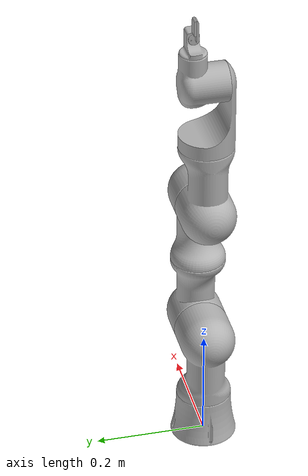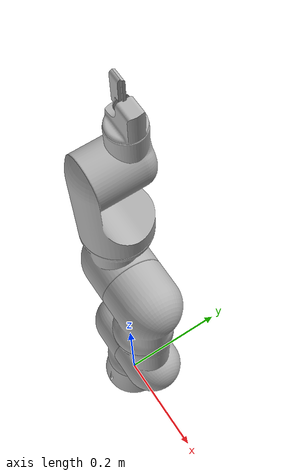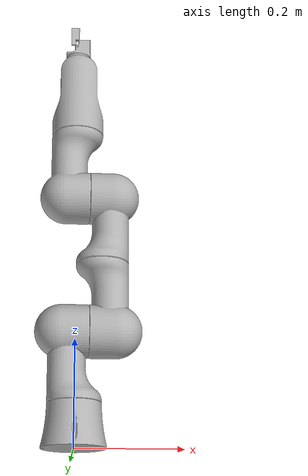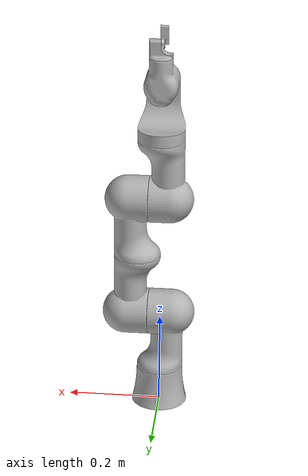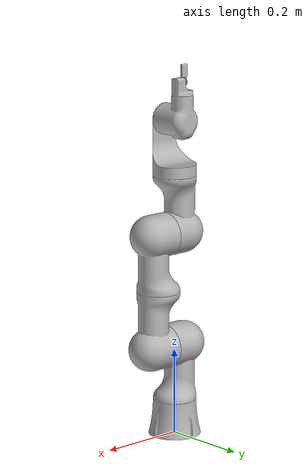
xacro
<?xml version="1.0" ?>
<robot name="robotic_arm" xmlns:xacro="http://www.ros.org/wiki/xacro">

<xacro:include filename="$(find robotic_arm_description)/urdf/materials.xacro" />
<xacro:include filename="$(find robotic_arm_description)/urdf/robotic_arm.trans" />
<xacro:include filename="$(find robotic_arm_description)/urdf/robotic_arm.gazebo" />
<link name="world"/>
<link name="base_link">
  <inertial>
    <origin rpy="0 0 0" xyz="0.0007204928345172032 -0.004020465220188242 0.04717716700960924"/>
    <mass value="5.749401825671835"/>
    <inertia ixx="0.007412" ixy="-0.0" ixz="-0.0" iyy="0.007412" iyz="-0.0" izz="0.008288"/>
  </inertial>
  <visual>
    <origin rpy="0 0 0" xyz="0 0 0"/>
    <geometry>
      <mesh filename="package://robotic_arm_description/meshes/base_link.stl" scale="0.001 0.001 0.001"/>
    </geometry>
    <material name="silver"/>
  </visual>
  <collision>
    <origin rpy="0 0 0" xyz="0 0 0"/>
    <geometry>
      <mesh filename="package://robotic_arm_description/meshes/base_link.stl" scale="0.001 0.001 0.001"/>
    </geometry>
  </collision>
</link>

<link name="link1_1">
  <inertial>
    <origin rpy="0 0 0" xyz="-0.014102677803517396 -4.3136583947021856e-07 0.0963021881490019"/>
    <mass value="9.886638889856904"/>
    <inertia ixx="0.028938" ixy="0.0" ixz="0.00225" iyy="0.029652" iyz="0.0" izz="0.010294"/>
  </inertial>
  <visual>
    <origin rpy="0 0 0" xyz="-0.00072 0.00402 -0.090703"/>
    <geometry>
      <mesh filename="package://robotic_arm_description/meshes/link1_1.stl" scale="0.001 0.001 0.001"/>
    </geometry>
    <material name="silver"/>
  </visual>
  <collision>
    <origin rpy="0 0 0" xyz="-0.00072 0.00402 -0.090703"/>
    <geometry>
      <mesh filename="package://robotic_arm_description/meshes/link1_1.stl" scale="0.001 0.001 0.001"/>
    </geometry>
  </collision>
</link>

<link name="link2_1">
  <inertial>
    <origin rpy="0 0 0" xyz="0.03900602888131991 -5.076874135274273e-07 0.037747731512113386"/>
    <mass value="8.491131635058604"/>
    <inertia ixx="0.028031" ixy="0.0" ixz="0.002228" iyy="0.028711" iyz="0.0" izz="0.009465"/>
  </inertial>
  <visual>
    <origin rpy="0 0 0" xyz="-0.02572 0.00402 -0.222703"/>
    <geometry>
      <mesh filename="package://robotic_arm_description/meshes/link2_1.stl" scale="0.001 0.001 0.001"/>
    </geometry>
    <material name="silver"/>
  </visual>
  <collision>
    <origin rpy="0 0 0" xyz="-0.02572 0.00402 -0.222703"/>
    <geometry>
      <mesh filename="package://robotic_arm_description/meshes/link2_1.stl" scale="0.001 0.001 0.001"/>
    </geometry>
  </collision>
</link>

<link name="link3_1">
  <inertial>
    <origin rpy="0 0 0" xyz="0.012475062626955039 -4.4105522638629435e-07 0.09282081501235429"/>
    <mass value="8.19717066814797"/>
    <inertia ixx="0.027193" ixy="0.0" ixz="-0.001721" iyy="0.027471" iyz="0.0" izz="0.008682"/>
  </inertial>
  <visual>
    <origin rpy="0 0 0" xyz="-0.050721 0.00402 -0.354703"/>
    <geometry>
      <mesh filename="package://robotic_arm_description/meshes/link3_1.stl" scale="0.001 0.001 0.001"/>
    </geometry>
    <material name="silver"/>
  </visual>
  <collision>
    <origin rpy="0 0 0" xyz="-0.050721 0.00402 -0.354703"/>
    <geometry>
      <mesh filename="package://robotic_arm_description/meshes/link3_1.stl" scale="0.001 0.001 0.001"/>
    </geometry>
  </collision>
</link>

<link name="link4_1">
  <inertial>
    <origin rpy="0 0 0" xyz="-0.03747506488702981 -4.456113198636133e-07 0.03917868618877174"/>
    <mass value="8.197173492795319"/>
    <inertia ixx="0.027193" ixy="-0.0" ixz="-0.001721" iyy="0.027471" iyz="-0.0" izz="0.008682"/>
  </inertial>
  <visual>
    <origin rpy="0 0 0" xyz="-0.02572 0.00402 -0.486703"/>
    <geometry>
      <mesh filename="package://robotic_arm_description/meshes/link4_1.stl" scale="0.001 0.001 0.001"/>
    </geometry>
    <material name="silver"/>
  </visual>
  <collision>
    <origin rpy="0 0 0" xyz="-0.02572 0.00402 -0.486703"/>
    <geometry>
      <mesh filename="package://robotic_arm_description/meshes/link4_1.stl" scale="0.001 0.001 0.001"/>
    </geometry>
  </collision>
</link>

<link name="link5_1">
  <inertial>
    <origin rpy="0 0 0" xyz="1.0828280554695847e-06 -0.013600178332960785 0.0359503007912827"/>
    <mass value="2.7272453464013666"/>
    <inertia ixx="0.005718" ixy="0.0" ixz="-0.0" iyy="0.005217" iyz="0.001527" izz="0.003392"/>
  </inertial>
  <visual>
    <origin rpy="0 0 0" xyz="-0.00072 0.00402 -0.618703"/>
    <geometry>
      <mesh filename="package://robotic_arm_description/meshes/link5_1.stl" scale="0.001 0.001 0.001"/>
    </geometry>
    <material name="silver"/>
  </visual>
  <collision>
    <origin rpy="0 0 0" xyz="-0.00072 0.00402 -0.618703"/>
    <geometry>
      <mesh filename="package://robotic_arm_description/meshes/link5_1.stl" scale="0.001 0.001 0.001"/>
    </geometry>
  </collision>
</link>

<link name="link6_1">
  <inertial>
    <origin rpy="0 0 0" xyz="6.239235659121671e-07 0.04390740757477772 0.005763614935093253"/>
    <mass value="3.0329082890678123"/>
    <inertia ixx="0.00335" ixy="0.0" ixz="-0.0" iyy="0.002555" iyz="-0.000289" izz="0.002524"/>
  </inertial>
  <visual>
    <origin rpy="0 0 0" xyz="-0.00072 0.03902 -0.745703"/>
    <geometry>
      <mesh filename="package://robotic_arm_description/meshes/link6_1.stl" scale="0.001 0.001 0.001"/>
    </geometry>
    <material name="silver"/>
  </visual>
  <collision>
    <origin rpy="0 0 0" xyz="-0.00072 0.03902 -0.745703"/>
    <geometry>
      <mesh filename="package://robotic_arm_description/meshes/link6_1.stl" scale="0.001 0.001 0.001"/>
    </geometry>
  </collision>
</link>

<link name="gripper_base_1">
  <inertial>
    <origin rpy="0 0 0" xyz="0.005097413793138346 -2.649989419869353e-06 0.017134159266362525"/>
    <mass value="0.26500889271897426"/>
    <inertia ixx="7.5e-05" ixy="-0.0" ixz="-8e-06" iyy="9.6e-05" iyz="0.0" izz="5.5e-05"/>
  </inertial>
  <visual>
    <origin rpy="0 0 0" xyz="-0.00072 -0.02098 -0.805703"/>
    <geometry>
      <mesh filename="package://robotic_arm_description/meshes/gripper_base_1.stl" scale="0.001 0.001 0.001"/>
    </geometry>
    <material name="silver"/>
  </visual>
  <collision>
    <origin rpy="0 0 0" xyz="-0.00072 -0.02098 -0.805703"/>
    <geometry>
      <mesh filename="package://robotic_arm_description/meshes/gripper_base_1.stl" scale="0.001 0.001 0.001"/>
    </geometry>
  </collision>
</link>

<link name="jaw_1">
  <inertial>
    <origin rpy="0 0 0" xyz="-0.007476860765804491 -0.0029560191370380517 0.015777846119835903"/>
    <mass value="0.02160891669726967"/>
    <inertia ixx="4e-06" ixy="-0.0" ixz="0.0" iyy="4e-06" iyz="0.0" izz="1e-06"/>
  </inertial>
  <visual>
    <origin rpy="0 0 0" xyz="-0.00072 -0.02098 -0.835703"/>
    <geometry>
      <mesh filename="package://robotic_arm_description/meshes/jaw_1.stl" scale="0.001 0.001 0.001"/>
    </geometry>
    <material name="silver"/>
  </visual>
  <collision>
    <origin rpy="0 0 0" xyz="-0.00072 -0.02098 -0.835703"/>
    <geometry>
      <mesh filename="package://robotic_arm_description/meshes/jaw_1.stl" scale="0.001 0.001 0.001"/>
    </geometry>
  </collision>
</link>

<joint name="virtual_joint" type="fixed">
  <parent link="world"/>
  <child link="base_link"/>
</joint>

<joint name="Rev1" type="continuous">
  <origin rpy="0 0 0" xyz="0.00072 -0.00402 0.090703"/>
  <parent link="base_link"/>
  <child link="link1_1"/>
  <axis xyz="0.0 -0.0 0.01"/>
</joint>

<joint name="Rev2" type="continuous">
  <origin rpy="0 0 0" xyz="0.025 0.0 0.132"/>
  <parent link="link1_1"/>
  <child link="link2_1"/>
  <axis xyz="0.01 -0.0 0.0"/>
</joint>

<joint name="Rev3" type="continuous">
  <origin rpy="0 0 0" xyz="0.025001 0.0 0.132"/>
  <parent link="link2_1"/>
  <child link="link3_1"/>
  <axis xyz="0.0 -0.0 0.01"/>
</joint>

<joint name="Rev4" type="continuous">
  <origin rpy="0 0 0" xyz="-0.025001 0.0 0.132"/>
  <parent link="link3_1"/>
  <child link="link4_1"/>
  <axis xyz="-0.01 0.0 -0.0"/>
</joint>

<joint name="Rev5" type="continuous">
  <origin rpy="0 0 0" xyz="-0.025 0.0 0.132"/>
  <parent link="link4_1"/>
  <child link="link5_1"/>
  <axis xyz="0.0 -0.0 0.01"/>
</joint>

<joint name="Rev6" type="continuous">
  <origin rpy="0 0 0" xyz="0.0 -0.035 0.127"/>
  <parent link="link5_1"/>
  <child link="link6_1"/>
  <axis xyz="0.0 0.01 0.0"/>
</joint>

<joint name="Rev7" type="continuous">
  <origin rpy="0 0 0" xyz="0.0 0.06 0.06"/>
  <parent link="link6_1"/>
  <child link="gripper_base_1"/>
  <axis xyz="0.0 -0.0 0.01"/>
</joint>

<joint name="Rev8" type="revolute">
  <origin rpy="0 0 0" xyz="0.0 0.0 0.03"/>
  <parent link="gripper_base_1"/>
  <child link="jaw_1"/>
  <axis xyz="-0.01 -0.0 -0.0"/>
  <limit effort="100" lower="-1.570796" upper="0.0" velocity="100"/>
</joint>

</robot>

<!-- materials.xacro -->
<robot name="robotic_arm" xmlns:xacro="http://www.ros.org/wiki/xacro" >

<material name="silver">
  <color rgba="0.700 0.700 0.700 1.000"/>
</material>

</robot>

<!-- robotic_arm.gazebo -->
<robot name="robotic_arm" xmlns:xacro="http://www.ros.org/wiki/xacro" >

<xacro:property name="body_color" value="Gazebo/Silver" />

<gazebo>
  <plugin filename="libgazebo_ros_control.so" name="control"/>
</gazebo>
<gazebo reference="base_link">
  <material>${body_color}</material>
  <mu1>0.2</mu1>
  <mu2>0.2</mu2>
  <selfCollide>true</selfCollide>
  <gravity>true</gravity>
</gazebo>

<gazebo reference="link1_1">
  <material>${body_color}</material>
  <mu1>0.2</mu1>
  <mu2>0.2</mu2>
  <selfCollide>true</selfCollide>
</gazebo>

<gazebo reference="link2_1">
  <material>${body_color}</material>
  <mu1>0.2</mu1>
  <mu2>0.2</mu2>
  <selfCollide>true</selfCollide>
</gazebo>

<gazebo reference="link3_1">
  <material>${body_color}</material>
  <mu1>0.2</mu1>
  <mu2>0.2</mu2>
  <selfCollide>true</selfCollide>
</gazebo>

<gazebo reference="link4_1">
  <material>${body_color}</material>
  <mu1>0.2</mu1>
  <mu2>0.2</mu2>
  <selfCollide>true</selfCollide>
</gazebo>

<gazebo reference="link5_1">
  <material>${body_color}</material>
  <mu1>0.2</mu1>
  <mu2>0.2</mu2>
  <selfCollide>true</selfCollide>
</gazebo>

<gazebo reference="link6_1">
  <material>${body_color}</material>
  <mu1>0.2</mu1>
  <mu2>0.2</mu2>
  <selfCollide>true</selfCollide>
</gazebo>

<gazebo reference="gripper_base_1">
  <material>${body_color}</material>
  <mu1>0.2</mu1>
  <mu2>0.2</mu2>
  <selfCollide>true</selfCollide>
</gazebo>

<gazebo reference="jaw_1">
  <material>${body_color}</material>
  <mu1>0.2</mu1>
  <mu2>0.2</mu2>
  <selfCollide>true</selfCollide>
</gazebo>

</robot>
